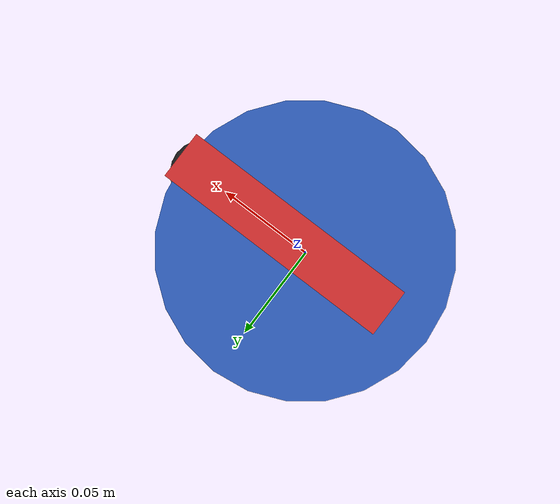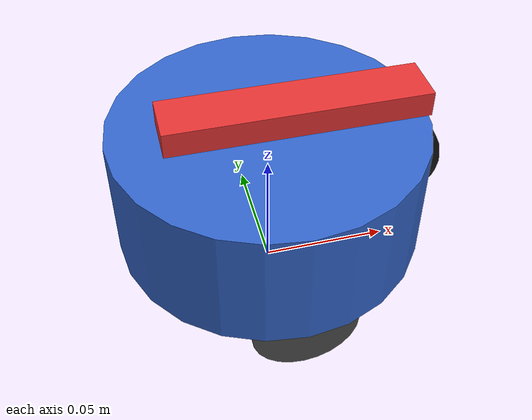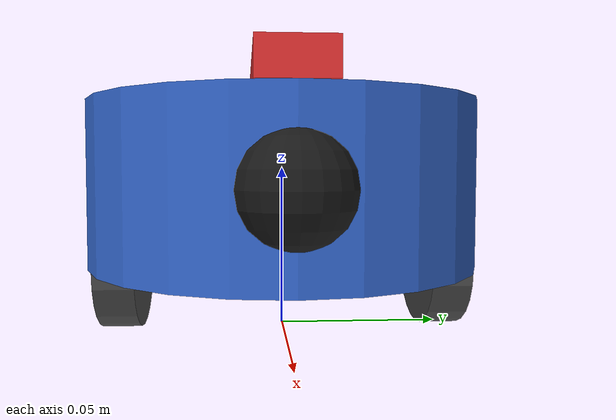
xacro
<?xml version="1.0"?>
<robot name="diffdrive_wheel_robot" xmlns:xacro="http://www.ros.org/wiki/xacro">

  <!-- ==================== PARAMETERS ==================== -->

  <!-- Robot body dimensions - scaled to realistic small robot (radius ~0.06m) -->
  <xacro:property name="body_radius" value="0.06"/>
  <xacro:property name="body_height" value="0.05"/>
  <xacro:property name="body_mass" value="0.6"/>

  <!-- Drive wheel parameters - scaled proportionally -->
  <xacro:property name="wheel_radius" value="0.02"/>
  <xacro:property name="wheel_width" value="0.012"/>
  <xacro:property name="wheel_mass" value="0.05"/>
  <xacro:property name="wheel_base" value="0.10"/>

  <!-- Caster wheel -->
  <xacro:property name="caster_radius" value="0.01"/>
  <xacro:property name="caster_offset" value="-0.045"/>

  <!-- Bumper parameters -->
  <xacro:property name="bumper_radius" value="0.015"/>
  <xacro:property name="bumper_offset_x" value="0.055"/>
  <xacro:property name="bumper_height" value="0.025"/>

  <!-- ==================== MATERIALS ==================== -->

  <material name="robot_blue">
    <color rgba="0.2 0.4 0.8 1.0"/>
  </material>

  <material name="black">
    <color rgba="0.1 0.1 0.1 1.0"/>
  </material>

  <material name="dark_gray">
    <color rgba="0.3 0.3 0.3 1.0"/>
  </material>

  <material name="marker_red">
    <color rgba="0.9 0.2 0.2 1.0"/>
  </material>

  <!-- ==================== WORLD LINK ==================== -->

  <link name="world"/>

  <!-- ==================== PLANAR JOINTS ==================== -->

  <!-- X translation joint -->
  <joint name="x_joint" type="prismatic">
    <parent link="world"/>
    <child link="x_carrier"/>
    <origin xyz="0 0 ${wheel_radius}" rpy="0 0 0"/>
    <axis xyz="1 0 0"/>
    <limit lower="-100" upper="100" effort="1000" velocity="10"/>
    <dynamics damping="1.0"/>
  </joint>

  <link name="x_carrier">
    <inertial>
      <mass value="0.01"/>
      <inertia ixx="0.0001" ixy="0" ixz="0" iyy="0.0001" iyz="0" izz="0.0001"/>
    </inertial>
  </link>

  <!-- Y translation joint -->
  <joint name="y_joint" type="prismatic">
    <parent link="x_carrier"/>
    <child link="y_carrier"/>
    <origin xyz="0 0 0" rpy="0 0 0"/>
    <axis xyz="0 1 0"/>
    <limit lower="-100" upper="100" effort="1000" velocity="10"/>
    <dynamics damping="1.0"/>
  </joint>

  <link name="y_carrier">
    <inertial>
      <mass value="0.01"/>
      <inertia ixx="0.0001" ixy="0" ixz="0" iyy="0.0001" iyz="0" izz="0.0001"/>
    </inertial>
  </link>

  <!-- Theta rotation joint -->
  <joint name="theta_joint" type="continuous">
    <parent link="y_carrier"/>
    <child link="base_link"/>
    <origin xyz="0 0 0" rpy="0 0 0"/>
    <axis xyz="0 0 1"/>
    <limit effort="1000" velocity="20"/>
    <dynamics damping="0.5"/>
  </joint>

  <!-- ==================== BASE LINK ==================== -->

  <link name="base_link">
    <!-- Main cylindrical body -->
    <visual>
      <geometry>
        <cylinder length="${body_height}" radius="${body_radius}"/>
      </geometry>
      <origin rpy="0 0 0" xyz="0 0 ${body_height/2}"/>
      <material name="robot_blue"/>
    </visual>

    <!-- Forward direction marker -->
    <visual>
      <geometry>
        <box size="0.1 0.02 0.01"/>
      </geometry>
      <origin rpy="0 0 0" xyz="${body_radius - 0.05} 0 ${body_height + 0.005}"/>
      <material name="marker_red"/>
    </visual>

    <collision>
      <geometry>
        <cylinder length="${body_height}" radius="${body_radius}"/>
      </geometry>
      <origin rpy="0 0 0" xyz="0 0 ${body_height/2}"/>
    </collision>

    <inertial>
      <mass value="${body_mass}"/>
      <origin xyz="0 0 ${body_height/2}"/>
      <inertia ixx="${body_mass*(3*body_radius*body_radius + body_height*body_height)/12}"
               ixy="0" ixz="0"
               iyy="${body_mass*(3*body_radius*body_radius + body_height*body_height)/12}"
               iyz="0"
               izz="${body_mass*body_radius*body_radius/2}"/>
    </inertial>
  </link>

  <!-- ==================== BUMPER ==================== -->

  <joint name="bumper_joint" type="fixed">
    <parent link="base_link"/>
    <child link="bumper"/>
    <origin xyz="${bumper_offset_x} 0 ${bumper_height}" rpy="0 0 0"/>
  </joint>

  <link name="bumper">
    <visual>
      <geometry>
        <sphere radius="${bumper_radius}"/>
      </geometry>
      <material name="black"/>
    </visual>

    <collision>
      <geometry>
        <sphere radius="${bumper_radius}"/>
      </geometry>
    </collision>

    <inertial>
      <mass value="0.2"/>
      <inertia ixx="0.0001" ixy="0" ixz="0" iyy="0.0001" iyz="0" izz="0.0001"/>
    </inertial>
  </link>

  <!-- ==================== DRIVE WHEELS ==================== -->

  <!-- Left wheel -->
  <joint name="wheel_left_joint" type="continuous">
    <parent link="base_link"/>
    <child link="wheel_left_link"/>
    <origin xyz="0 ${wheel_base/2} 0" rpy="${-1.5708} 0 0"/>
    <axis xyz="0 0 1"/>
    <limit effort="100" velocity="100"/>
    <dynamics damping="0.01"/>
  </joint>

  <link name="wheel_left_link">
    <visual>
      <geometry>
        <cylinder length="${wheel_width}" radius="${wheel_radius}"/>
      </geometry>
      <material name="dark_gray"/>
    </visual>

    <collision>
      <geometry>
        <cylinder length="${wheel_width}" radius="${wheel_radius}"/>
      </geometry>
    </collision>

    <inertial>
      <mass value="${wheel_mass}"/>
      <inertia ixx="${wheel_mass*(3*wheel_radius*wheel_radius + wheel_width*wheel_width)/12}"
               ixy="0" ixz="0"
               iyy="${wheel_mass*(3*wheel_radius*wheel_radius + wheel_width*wheel_width)/12}"
               iyz="0"
               izz="${wheel_mass*wheel_radius*wheel_radius/2}"/>
    </inertial>
  </link>

  <!-- Right wheel -->
  <joint name="wheel_right_joint" type="continuous">
    <parent link="base_link"/>
    <child link="wheel_right_link"/>
    <origin xyz="0 ${-wheel_base/2} 0" rpy="${-1.5708} 0 0"/>
    <axis xyz="0 0 1"/>
    <limit effort="100" velocity="100"/>
    <dynamics damping="0.01"/>
  </joint>

  <link name="wheel_right_link">
    <visual>
      <geometry>
        <cylinder length="${wheel_width}" radius="${wheel_radius}"/>
      </geometry>
      <material name="dark_gray"/>
    </visual>

    <collision>
      <geometry>
        <cylinder length="${wheel_width}" radius="${wheel_radius}"/>
      </geometry>
    </collision>

    <inertial>
      <mass value="${wheel_mass}"/>
      <inertia ixx="${wheel_mass*(3*wheel_radius*wheel_radius + wheel_width*wheel_width)/12}"
               ixy="0" ixz="0"
               iyy="${wheel_mass*(3*wheel_radius*wheel_radius + wheel_width*wheel_width)/12}"
               iyz="0"
               izz="${wheel_mass*wheel_radius*wheel_radius/2}"/>
    </inertial>
  </link>

  <!-- ==================== CASTER WHEEL ==================== -->

  <joint name="caster_joint" type="fixed">
    <parent link="base_link"/>
    <child link="caster_link"/>
    <origin xyz="${caster_offset} 0 ${caster_radius - wheel_radius}" rpy="0 0 0"/>
  </joint>

  <link name="caster_link">
    <visual>
      <geometry>
        <sphere radius="${caster_radius}"/>
      </geometry>
      <material name="dark_gray"/>
    </visual>

    <collision>
      <geometry>
        <sphere radius="${caster_radius}"/>
      </geometry>
    </collision>

    <inertial>
      <mass value="0.1"/>
      <inertia ixx="0.00001" ixy="0" ixz="0" iyy="0.00001" iyz="0" izz="0.00001"/>
    </inertial>
  </link>

</robot>
